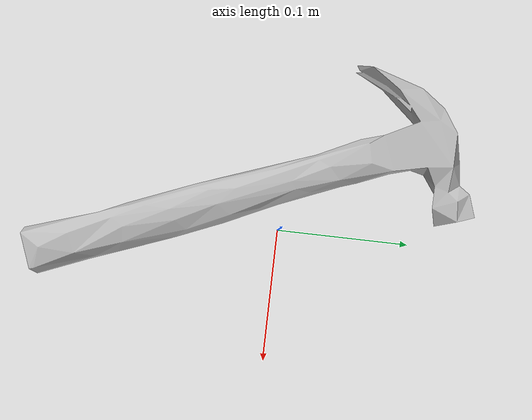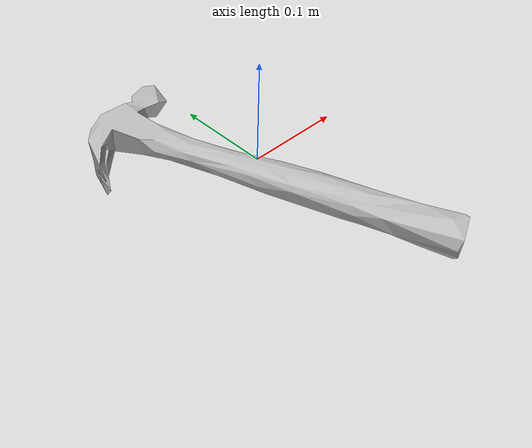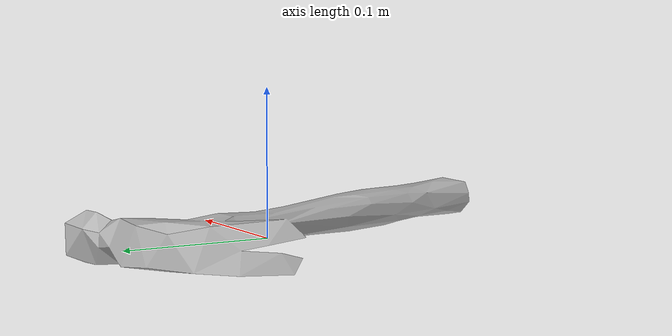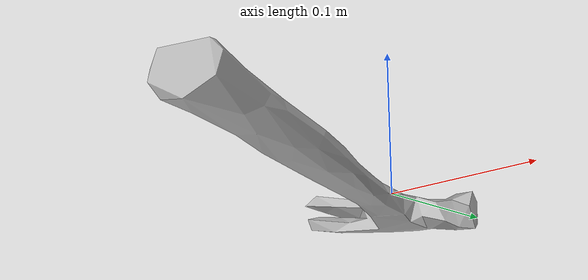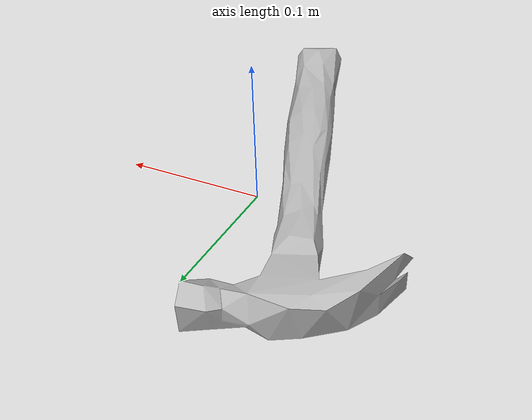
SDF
<?xml version='1.0'?>
<sdf version="1.4">
  <model name="048_hammer">
    <static>false</static>
    <link name="link">
      <inertial>
        <pose>-0.03655434362277043 -0.0033628758162500593 0.01512886024023672 -1.34443211875717 -1.5560739317324674 0.13557110454284704</pose>
        <mass>0.08337116431197776</mass>
        <inertia>
          <ixx>0.0006686568403831824</ixx>
          <ixy>1.922184247496081e-20</ixy>
          <ixz>-3.8999640301031207e-20</ixz>
          <iyy>0.0006073535116579152</iyy>
          <iyz>1.1494257061857612e-19</iyz>
          <izz>7.375902507074737e-05</izz>
        </inertia>
      </inertial>
      <collision name="collision">
        <geometry>
          <mesh>
            <!-- Use a downsampled mesh for collisions -->
            <uri>model:///048_hammer/048_hammer_250_collision.stl</uri>
	        </mesh>
        </geometry>
        <surface>
      </surface>
      </collision>
      <visual name="visual">
        <geometry>
          <mesh>
            <uri>model:///048_hammer/textured.obj</uri>
	        </mesh>
        </geometry>
        <material>
          <script>
            <uri>model:///048_hammer/048_hammer.material</uri>
            <name>048_hammer</name>
          </script>
        </material>
      </visual>
    </link>
  </model>
</sdf>
